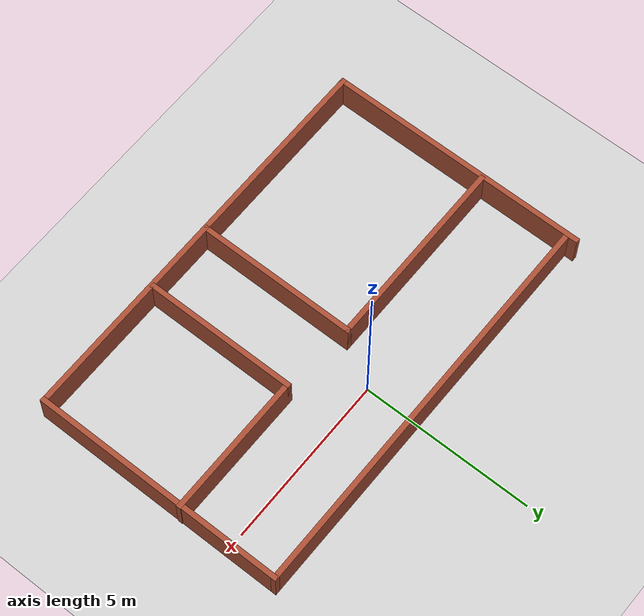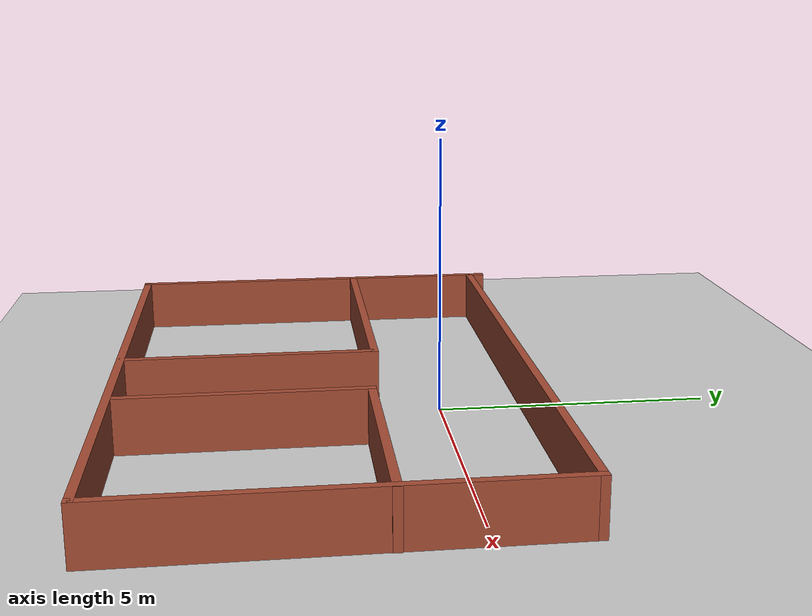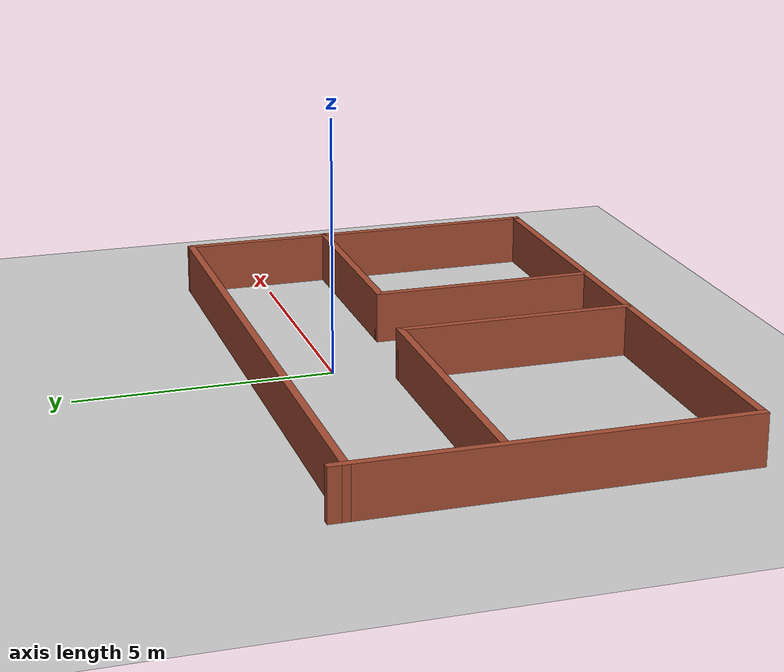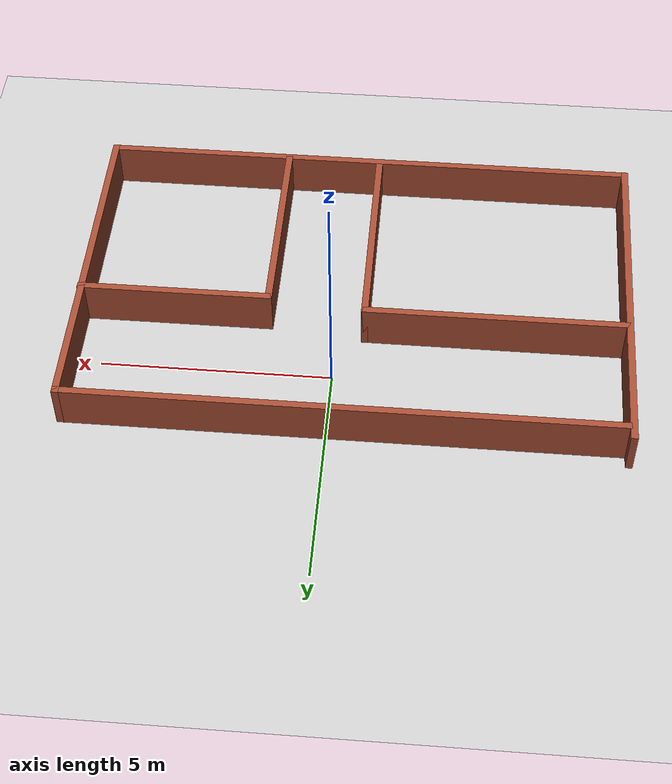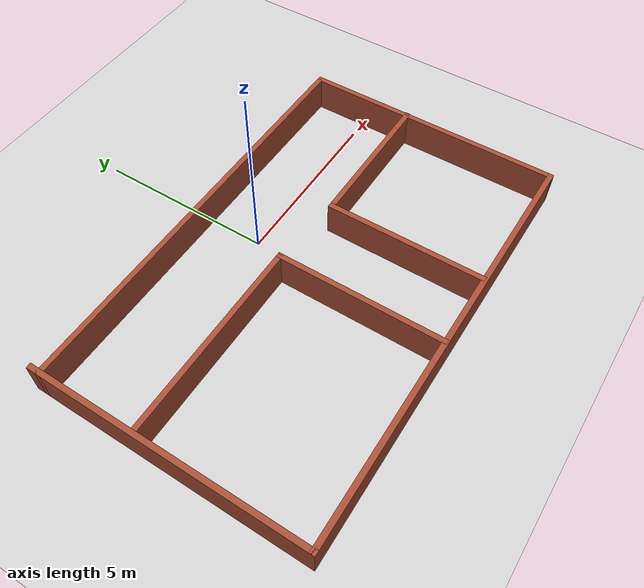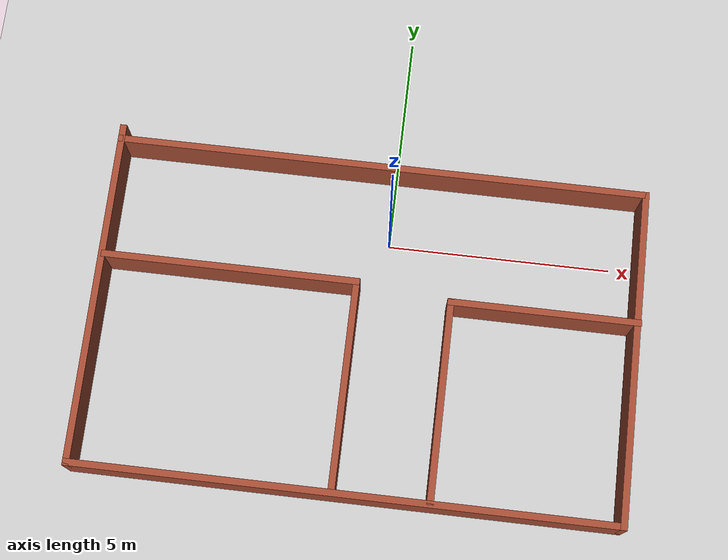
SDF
<sdf version="1.6">
 <world name="default">
  <light name="sun" type="directional">
   <pose>0 0 10 0 -0 0</pose>
   <diffuse>0.8 0.8 0.8 1</diffuse>
   <specular>0.2 0.2 0.2 1</specular>
   <attenuation>
    <range>1000</range>
    <constant>0.9</constant>
    <linear>0.01</linear>
    <quadratic>0.001</quadratic>
   </attenuation>
   <direction>-0.5 0.1 -0.9</direction>
  </light>
  <model name="ground_plane">
   <static>1</static>
   <link name="link">
    <collision name="collision">
     <geometry><plane><normal>0 0 1</normal><size>100 100</size></plane></geometry>
     <surface><friction><ode><mu>100</mu><mu2>50</mu2></ode></friction></surface>
    </collision>
    <visual name="visual">
     <cast_shadows>0</cast_shadows>
     <geometry><plane><normal>0 0 1</normal><size>100 100</size></plane></geometry>
     <material>
      <script><uri>file://media/materials/scripts/gazebo.material</uri><name>Gazebo/Grey</name></script>
     </material>
    </visual>
   </link>
  </model>
  <gravity>0 0 -9.8</gravity>
  <magnetic_field>6e-06 2.3e-05 -4.2e-05</magnetic_field>
  <atmosphere type="adiabatic"/>
  <physics name="default_physics" default="0" type="ode">
   <max_step_size>0.001</max_step_size>
   <real_time_factor>1</real_time_factor>
   <real_time_update_rate>1000</real_time_update_rate>
  </physics>
  <scene><ambient>0.4 0.4 0.4 1</ambient><background>0.7 0.7 0.7 1</background><shadows>1</shadows></scene>
  <spherical_coordinates>
   <surface_model>EARTH_WGS84</surface_model>
   <latitude_deg>0</latitude_deg>
   <longitude_deg>0</longitude_deg>
   <elevation>0</elevation>
   <heading_deg>0</heading_deg>
  </spherical_coordinates>
  <model name="dang_house_2">
   <pose>-0.345289 -1.9882 0 0 -0 0</pose>
   <link name="Wall_14">
    <collision name="Wall_14_Collision">
     <geometry><box><size>7.75 0.15 1</size></box></geometry>
     <pose>0 0 0.5 0 -0 0</pose>
    </collision>
    <visual name="Wall_14_Visual">
     <pose>0 0 0.5 0 -0 0</pose>
     <geometry><box><size>7.75 0.15 1</size></box></geometry>
     <material>
      <script><uri>file://media/materials/scripts/gazebo.material</uri><name>Gazebo/Bricks</name></script>
      <ambient>1 1 1 1</ambient>
     </material>
     <meta><layer>0</layer></meta>
    </visual>
    <pose>-5.933 0 0 0 0 -1.5708</pose>
   </link>
   <link name="Wall_15">
    <collision name="Wall_15_Collision">
     <geometry><box><size>12 0.15 1</size></box></geometry>
     <pose>0 0 0.5 0 -0 0</pose>
    </collision>
    <visual name="Wall_15_Visual">
     <pose>0 0 0.5 0 -0 0</pose>
     <geometry><box><size>12 0.15 1</size></box></geometry>
     <material>
      <script><uri>file://media/materials/scripts/gazebo.material</uri><name>Gazebo/Bricks</name></script>
      <ambient>1 1 1 1</ambient>
     </material>
     <meta><layer>0</layer></meta>
    </visual>
    <pose>-0.008 -3.8 0 0 -0 0</pose>
   </link>
   <link name="Wall_16">
    <collision name="Wall_16_Collision">
     <geometry><box><size>7.5 0.15 1</size></box></geometry>
     <pose>0 0 0.5 0 -0 0</pose>
    </collision>
    <visual name="Wall_16_Visual">
     <pose>0 0 0.5 0 -0 0</pose>
     <geometry><box><size>7.5 0.15 1</size></box></geometry>
     <material>
      <script><uri>file://media/materials/scripts/gazebo.material</uri><name>Gazebo/Bricks</name></script>
      <ambient>1 1 1 1</ambient>
     </material>
     <meta><layer>0</layer></meta>
    </visual>
    <pose>5.917 -0.125 0 0 -0 1.5708</pose>
   </link>
   <link name="Wall_17">
    <collision name="Wall_17_Collision">
     <geometry><box><size>12 0.15 1</size></box></geometry>
     <pose>0 0 0.5 0 -0 0</pose>
    </collision>
    <visual name="Wall_17_Visual">
     <pose>0 0 0.5 0 -0 0</pose>
     <geometry><box><size>12 0.15 1</size></box></geometry>
     <material>
      <script><uri>file://media/materials/scripts/gazebo.material</uri><name>Gazebo/Bricks</name></script>
      <ambient>0.435294 0.796078 0.67451 1</ambient>
     </material>
     <meta><layer>0</layer></meta>
    </visual>
    <pose>-0.008 3.55 0 0 -0 3.14159</pose>
   </link>
   <link name="Wall_19">
    <collision name="Wall_19_Collision">
     <geometry><box><size>5.75 0.15 1</size></box></geometry>
     <pose>0 0 0.5 0 -0 0</pose>
    </collision>
    <visual name="Wall_19_Visual">
     <pose>0 0 0.5 0 -0 0</pose>
     <geometry><box><size>5.75 0.15 1</size></box></geometry>
     <material>
      <script><uri>file://media/materials/scripts/gazebo.material</uri><name>Gazebo/Bricks</name></script>
      <ambient>1 1 1 1</ambient>
     </material>
     <meta><layer>0</layer></meta>
    </visual>
    <pose>-3.071 0.837 0 0 -0 0</pose>
   </link>
   <link name="Wall_20">
    <collision name="Wall_20_Collision">
     <geometry><box><size>4.75 0.15 1</size></box></geometry>
     <pose>0 0 0.5 0 -0 0</pose>
    </collision>
    <visual name="Wall_20_Visual">
     <pose>0 0 0.5 0 -0 0</pose>
     <geometry><box><size>4.75 0.15 1</size></box></geometry>
     <material>
      <script><uri>file://media/materials/scripts/gazebo.material</uri><name>Gazebo/Bricks</name></script>
      <ambient>1 1 1 1</ambient>
     </material>
     <meta><layer>0</layer></meta>
    </visual>
    <pose>-0.271 -1.463 0 0 0 -1.5708</pose>
   </link>
   <link name="Wall_23">
    <collision name="Wall_23_Collision">
     <geometry><box><size>4.5 0.15 1</size></box></geometry>
     <pose>0 0 0.5 0 -0 0</pose>
    </collision>
    <visual name="Wall_23_Visual">
     <pose>0 0 0.5 0 -0 0</pose>
     <geometry><box><size>4.5 0.15 1</size></box></geometry>
     <material>
      <script><uri>file://media/materials/scripts/gazebo.material</uri><name>Gazebo/Bricks</name></script>
      <ambient>1 1 1 1</ambient>
     </material>
     <meta><layer>0</layer></meta>
    </visual>
    <pose>1.833 -1.561 0 0 -0 1.5708</pose>
   </link>
   <link name="Wall_24">
    <collision name="Wall_24_Collision">
     <geometry><box><size>4.25 0.15 1</size></box></geometry>
     <pose>0 0 0.5 0 -0 0</pose>
    </collision>
    <visual name="Wall_24_Visual">
     <pose>0 0 0.5 0 -0 0</pose>
     <geometry><box><size>4.25 0.15 1</size></box></geometry>
     <material>
      <script><uri>file://media/materials/scripts/gazebo.material</uri><name>Gazebo/Bricks</name></script>
      <ambient>1 1 1 1</ambient>
     </material>
     <meta><layer>0</layer></meta>
    </visual>
    <pose>3.883 0.614 0 0 -0 0</pose>
   </link>
   <static>1</static>
  </model>
 </world>
</sdf>
